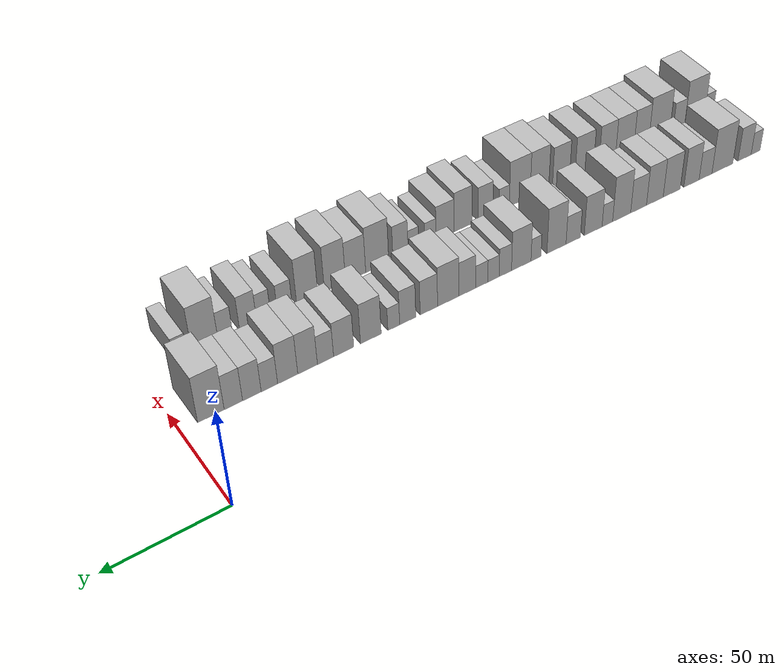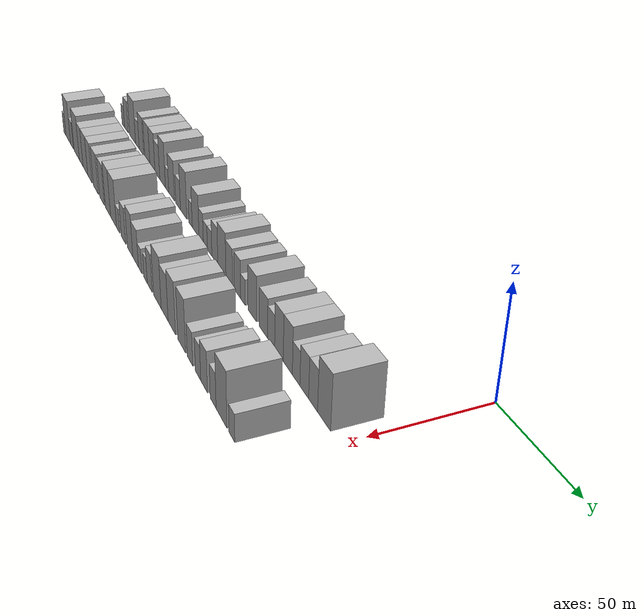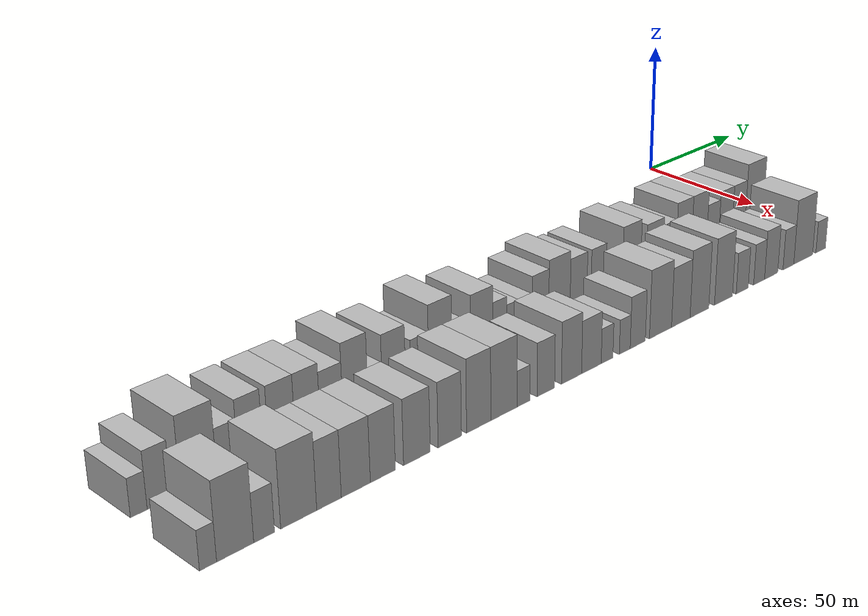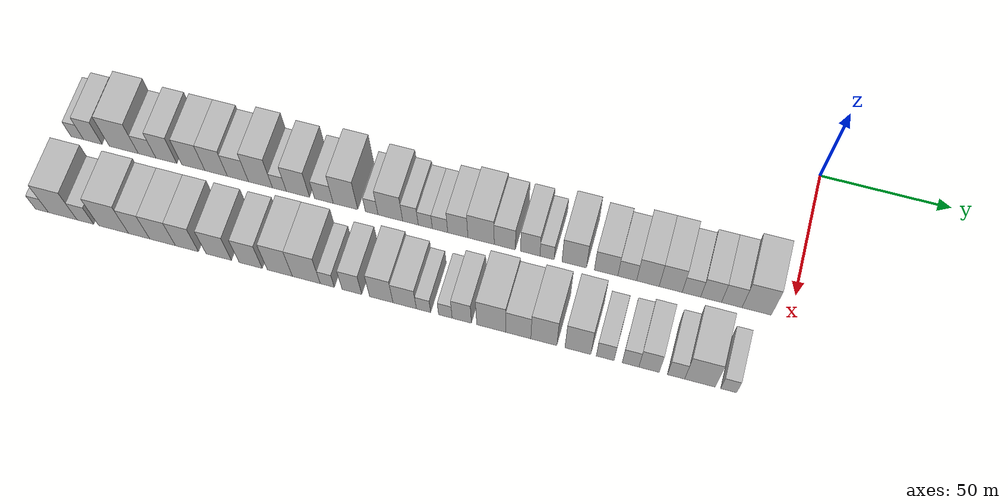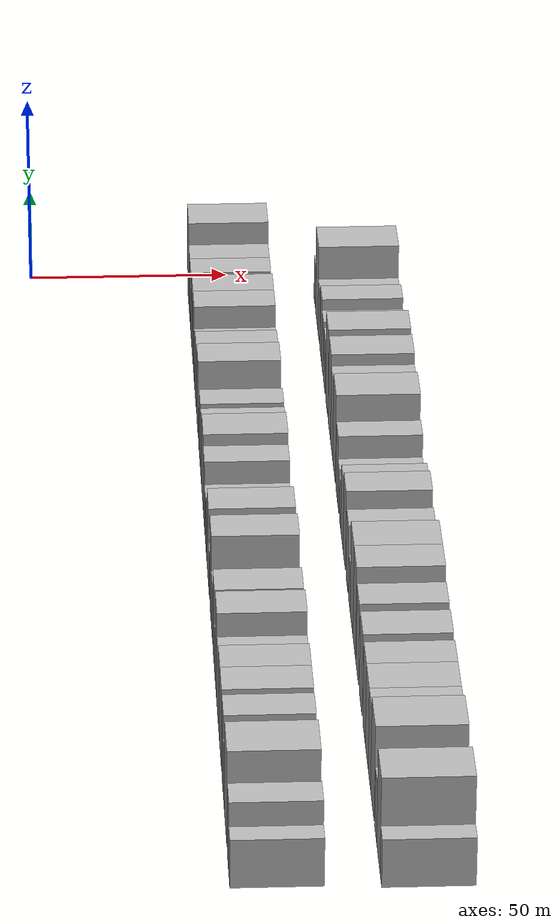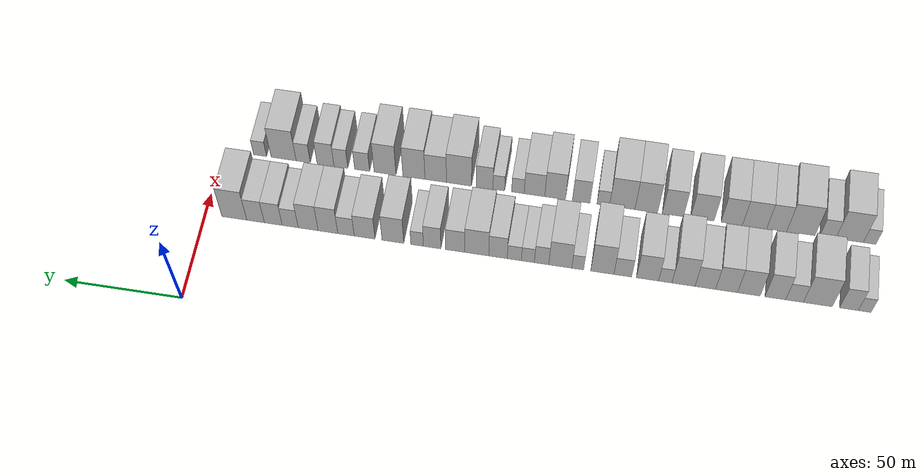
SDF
<sdf version="1.6">
 <world name="default">
  <model name="building_1">
   <static>1</static>
   <pose>50.0000 -278.3909 0 0.000000 0.000000 0.000000</pose>
   <link name="link">
    <pose>0 0 6.00 0 0 0</pose>
    <collision name="collision"><geometry><box><size>20.0000 5.2182 12.0000</size></box></geometry></collision>
    <visual name="visual">
     <cast_shadows>0</cast_shadows>
     <geometry><box><size>20.0000 5.2182 12.0000</size></box></geometry>
     <material>
      <script>
       <uri>model://HANNAS_wall/materials/scripts</uri>
       <uri>model://HANNAS_wall/materials/textures</uri>
       <name>vrc/HANNAS_wall</name>
      </script>
     </material>
    </visual>
   </link>
  </model>
  <model name="building_2">
   <static>1</static>
   <pose>50.0000 -271.9759 0 0.000000 0.000000 0.000000</pose>
   <link name="link">
    <pose>0 0 9.00 0 0 0</pose>
    <collision name="collision"><geometry><box><size>20.0000 7.6117 18.0000</size></box></geometry></collision>
    <visual name="visual">
     <cast_shadows>0</cast_shadows>
     <geometry><box><size>20.0000 7.6117 18.0000</size></box></geometry>
     <material>
      <script>
       <uri>model://HANNAS_wall/materials/scripts</uri>
       <uri>model://HANNAS_wall/materials/textures</uri>
       <name>vrc/HANNAS_wall</name>
      </script>
     </material>
    </visual>
   </link>
  </model>
  <model name="building_3">
   <static>1</static>
   <pose>50.0000 -259.2273 0 0.000000 0.000000 0.000000</pose>
   <link name="link">
    <pose>0 0 12.00 0 0 0</pose>
    <collision name="collision"><geometry><box><size>20.0000 11.8855 24.0000</size></box></geometry></collision>
    <visual name="visual">
     <cast_shadows>0</cast_shadows>
     <geometry><box><size>20.0000 11.8855 24.0000</size></box></geometry>
     <material>
      <script>
       <uri>model://HANNAS_wall/materials/scripts</uri>
       <uri>model://HANNAS_wall/materials/textures</uri>
       <name>vrc/HANNAS_wall</name>
      </script>
     </material>
    </visual>
   </link>
  </model>
  <model name="building_4">
   <static>1</static>
   <pose>50.0000 -249.6853 0 0.000000 0.000000 0.000000</pose>
   <link name="link">
    <pose>0 0 7.50 0 0 0</pose>
    <collision name="collision"><geometry><box><size>20.0000 7.1986 15.0000</size></box></geometry></collision>
    <visual name="visual">
     <cast_shadows>0</cast_shadows>
     <geometry><box><size>20.0000 7.1986 15.0000</size></box></geometry>
     <material>
      <script>
       <uri>model://HANNAS_wall/materials/scripts</uri>
       <uri>model://HANNAS_wall/materials/textures</uri>
       <name>vrc/HANNAS_wall</name>
      </script>
     </material>
    </visual>
   </link>
  </model>
  <model name="building_5">
   <static>1</static>
   <pose>50.0000 -241.8243 0 0.000000 0.000000 0.000000</pose>
   <link name="link">
    <pose>0 0 10.50 0 0 0</pose>
    <collision name="collision"><geometry><box><size>20.0000 8.5234 21.0000</size></box></geometry></collision>
    <visual name="visual">
     <cast_shadows>0</cast_shadows>
     <geometry><box><size>20.0000 8.5234 21.0000</size></box></geometry>
     <material>
      <script>
       <uri>model://HANNAS_wall/materials/scripts</uri>
       <uri>model://HANNAS_wall/materials/textures</uri>
       <name>vrc/HANNAS_wall</name>
      </script>
     </material>
    </visual>
   </link>
  </model>
  <model name="building_6">
   <static>1</static>
   <pose>50.0000 -230.8683 0 0.000000 0.000000 0.000000</pose>
   <link name="link">
    <pose>0 0 10.50 0 0 0</pose>
    <collision name="collision"><geometry><box><size>20.0000 9.3886 21.0000</size></box></geometry></collision>
    <visual name="visual">
     <cast_shadows>0</cast_shadows>
     <geometry><box><size>20.0000 9.3886 21.0000</size></box></geometry>
     <material>
      <script>
       <uri>model://HANNAS_wall/materials/scripts</uri>
       <uri>model://HANNAS_wall/materials/textures</uri>
       <name>vrc/HANNAS_wall</name>
      </script>
     </material>
    </visual>
   </link>
  </model>
  <model name="building_7">
   <static>1</static>
   <pose>50.0000 -221.6379 0 0.000000 0.000000 0.000000</pose>
   <link name="link">
    <pose>0 0 10.50 0 0 0</pose>
    <collision name="collision"><geometry><box><size>20.0000 9.0723 21.0000</size></box></geometry></collision>
    <visual name="visual">
     <cast_shadows>0</cast_shadows>
     <geometry><box><size>20.0000 9.0723 21.0000</size></box></geometry>
     <material>
      <script>
       <uri>model://HANNAS_wall/materials/scripts</uri>
       <uri>model://HANNAS_wall/materials/textures</uri>
       <name>vrc/HANNAS_wall</name>
      </script>
     </material>
    </visual>
   </link>
  </model>
  <model name="building_8">
   <static>1</static>
   <pose>50.0000 -212.8523 0 0.000000 0.000000 0.000000</pose>
   <link name="link">
    <pose>0 0 9.00 0 0 0</pose>
    <collision name="collision"><geometry><box><size>20.0000 8.4987 18.0000</size></box></geometry></collision>
    <visual name="visual">
     <cast_shadows>0</cast_shadows>
     <geometry><box><size>20.0000 8.4987 18.0000</size></box></geometry>
     <material>
      <script>
       <uri>model://HANNAS_wall/materials/scripts</uri>
       <uri>model://HANNAS_wall/materials/textures</uri>
       <name>vrc/HANNAS_wall</name>
      </script>
     </material>
    </visual>
   </link>
  </model>
  <model name="building_9">
   <static>1</static>
   <pose>50.0000 -203.7990 0 0.000000 0.000000 0.000000</pose>
   <link name="link">
    <pose>0 0 12.00 0 0 0</pose>
    <collision name="collision"><geometry><box><size>20.0000 9.6079 24.0000</size></box></geometry></collision>
    <visual name="visual">
     <cast_shadows>0</cast_shadows>
     <geometry><box><size>20.0000 9.6079 24.0000</size></box></geometry>
     <material>
      <script>
       <uri>model://HANNAS_wall/materials/scripts</uri>
       <uri>model://HANNAS_wall/materials/textures</uri>
       <name>vrc/HANNAS_wall</name>
      </script>
     </material>
    </visual>
   </link>
  </model>
  <model name="building_10">
   <static>1</static>
   <pose>50.0000 -196.2178 0 0.000000 0.000000 0.000000</pose>
   <link name="link">
    <pose>0 0 6.00 0 0 0</pose>
    <collision name="collision"><geometry><box><size>20.0000 5.5546 12.0000</size></box></geometry></collision>
    <visual name="visual">
     <cast_shadows>0</cast_shadows>
     <geometry><box><size>20.0000 5.5546 12.0000</size></box></geometry>
     <material>
      <script>
       <uri>model://HANNAS_wall/materials/scripts</uri>
       <uri>model://HANNAS_wall/materials/textures</uri>
       <name>vrc/HANNAS_wall</name>
      </script>
     </material>
    </visual>
   </link>
  </model>
  <model name="building_11">
   <static>1</static>
   <pose>50.0000 -188.8204 0 0.000000 0.000000 0.000000</pose>
   <link name="link">
    <pose>0 0 10.50 0 0 0</pose>
    <collision name="collision"><geometry><box><size>20.0000 9.2402 21.0000</size></box></geometry></collision>
    <visual name="visual">
     <cast_shadows>0</cast_shadows>
     <geometry><box><size>20.0000 9.2402 21.0000</size></box></geometry>
     <material>
      <script>
       <uri>model://HANNAS_wall/materials/scripts</uri>
       <uri>model://HANNAS_wall/materials/textures</uri>
       <name>vrc/HANNAS_wall</name>
      </script>
     </material>
    </visual>
   </link>
  </model>
  <model name="building_12">
   <static>1</static>
   <pose>50.0000 -178.4922 0 0.000000 0.000000 0.000000</pose>
   <link name="link">
    <pose>0 0 7.50 0 0 0</pose>
    <collision name="collision"><geometry><box><size>20.0000 7.4162 15.0000</size></box></geometry></collision>
    <visual name="visual">
     <cast_shadows>0</cast_shadows>
     <geometry><box><size>20.0000 7.4162 15.0000</size></box></geometry>
     <material>
      <script>
       <uri>model://HANNAS_wall/materials/scripts</uri>
       <uri>model://HANNAS_wall/materials/textures</uri>
       <name>vrc/HANNAS_wall</name>
      </script>
     </material>
    </visual>
   </link>
  </model>
  <model name="building_13">
   <static>1</static>
   <pose>50.0000 -169.9375 0 0.000000 0.000000 0.000000</pose>
   <link name="link">
    <pose>0 0 12.00 0 0 0</pose>
    <collision name="collision"><geometry><box><size>20.0000 9.6934 24.0000</size></box></geometry></collision>
    <visual name="visual">
     <cast_shadows>0</cast_shadows>
     <geometry><box><size>20.0000 9.6934 24.0000</size></box></geometry>
     <material>
      <script>
       <uri>model://HANNAS_wall/materials/scripts</uri>
       <uri>model://HANNAS_wall/materials/textures</uri>
       <name>vrc/HANNAS_wall</name>
      </script>
     </material>
    </visual>
   </link>
  </model>
  <model name="building_14">
   <static>1</static>
   <pose>50.0000 -159.5936 0 0.000000 0.000000 0.000000</pose>
   <link name="link">
    <pose>0 0 6.00 0 0 0</pose>
    <collision name="collision"><geometry><box><size>20.0000 4.9944 12.0000</size></box></geometry></collision>
    <visual name="visual">
     <cast_shadows>0</cast_shadows>
     <geometry><box><size>20.0000 4.9944 12.0000</size></box></geometry>
     <material>
      <script>
       <uri>model://HANNAS_wall/materials/scripts</uri>
       <uri>model://HANNAS_wall/materials/textures</uri>
       <name>vrc/HANNAS_wall</name>
      </script>
     </material>
    </visual>
   </link>
  </model>
  <model name="building_15">
   <static>1</static>
   <pose>50.0000 -152.2584 0 0.000000 0.000000 0.000000</pose>
   <link name="link">
    <pose>0 0 10.50 0 0 0</pose>
    <collision name="collision"><geometry><box><size>20.0000 9.6758 21.0000</size></box></geometry></collision>
    <visual name="visual">
     <cast_shadows>0</cast_shadows>
     <geometry><box><size>20.0000 9.6758 21.0000</size></box></geometry>
     <material>
      <script>
       <uri>model://HANNAS_wall/materials/scripts</uri>
       <uri>model://HANNAS_wall/materials/textures</uri>
       <name>vrc/HANNAS_wall</name>
      </script>
     </material>
    </visual>
   </link>
  </model>
  <model name="building_16">
   <static>1</static>
   <pose>50.0000 -144.3793 0 0.000000 0.000000 0.000000</pose>
   <link name="link">
    <pose>0 0 7.50 0 0 0</pose>
    <collision name="collision"><geometry><box><size>20.0000 6.0824 15.0000</size></box></geometry></collision>
    <visual name="visual">
     <cast_shadows>0</cast_shadows>
     <geometry><box><size>20.0000 6.0824 15.0000</size></box></geometry>
     <material>
      <script>
       <uri>model://HANNAS_wall/materials/scripts</uri>
       <uri>model://HANNAS_wall/materials/textures</uri>
       <name>vrc/HANNAS_wall</name>
      </script>
     </material>
    </visual>
   </link>
  </model>
  <model name="building_17">
   <static>1</static>
   <pose>50.0000 -138.5889 0 0.000000 0.000000 0.000000</pose>
   <link name="link">
    <pose>0 0 6.00 0 0 0</pose>
    <collision name="collision"><geometry><box><size>20.0000 5.4985 12.0000</size></box></geometry></collision>
    <visual name="visual">
     <cast_shadows>0</cast_shadows>
     <geometry><box><size>20.0000 5.4985 12.0000</size></box></geometry>
     <material>
      <script>
       <uri>model://HANNAS_wall/materials/scripts</uri>
       <uri>model://HANNAS_wall/materials/textures</uri>
       <name>vrc/HANNAS_wall</name>
      </script>
     </material>
    </visual>
   </link>
  </model>
  <model name="building_18">
   <static>1</static>
   <pose>50.0000 -132.8439 0 0.000000 0.000000 0.000000</pose>
   <link name="link">
    <pose>0 0 6.00 0 0 0</pose>
    <collision name="collision"><geometry><box><size>20.0000 5.9916 12.0000</size></box></geometry></collision>
    <visual name="visual">
     <cast_shadows>0</cast_shadows>
     <geometry><box><size>20.0000 5.9916 12.0000</size></box></geometry>
     <material>
      <script>
       <uri>model://HANNAS_wall/materials/scripts</uri>
       <uri>model://HANNAS_wall/materials/textures</uri>
       <name>vrc/HANNAS_wall</name>
      </script>
     </material>
    </visual>
   </link>
  </model>
  <model name="building_19">
   <static>1</static>
   <pose>50.0000 -125.9320 0 0.000000 0.000000 0.000000</pose>
   <link name="link">
    <pose>0 0 9.00 0 0 0</pose>
    <collision name="collision"><geometry><box><size>20.0000 7.8322 18.0000</size></box></geometry></collision>
    <visual name="visual">
     <cast_shadows>0</cast_shadows>
     <geometry><box><size>20.0000 7.8322 18.0000</size></box></geometry>
     <material>
      <script>
       <uri>model://HANNAS_wall/materials/scripts</uri>
       <uri>model://HANNAS_wall/materials/textures</uri>
       <name>vrc/HANNAS_wall</name>
      </script>
     </material>
    </visual>
   </link>
  </model>
  <model name="building_20">
   <static>1</static>
   <pose>50.0000 -116.9215 0 0.000000 0.000000 0.000000</pose>
   <link name="link">
    <pose>0 0 10.50 0 0 0</pose>
    <collision name="collision"><geometry><box><size>20.0000 10.1887 21.0000</size></box></geometry></collision>
    <visual name="visual">
     <cast_shadows>0</cast_shadows>
     <geometry><box><size>20.0000 10.1887 21.0000</size></box></geometry>
     <material>
      <script>
       <uri>model://HANNAS_wall/materials/scripts</uri>
       <uri>model://HANNAS_wall/materials/textures</uri>
       <name>vrc/HANNAS_wall</name>
      </script>
     </material>
    </visual>
   </link>
  </model>
  <model name="building_21">
   <static>1</static>
   <pose>50.0000 -107.7564 0 0.000000 0.000000 0.000000</pose>
   <link name="link">
    <pose>0 0 9.00 0 0 0</pose>
    <collision name="collision"><geometry><box><size>20.0000 8.1417 18.0000</size></box></geometry></collision>
    <visual name="visual">
     <cast_shadows>0</cast_shadows>
     <geometry><box><size>20.0000 8.1417 18.0000</size></box></geometry>
     <material>
      <script>
       <uri>model://HANNAS_wall/materials/scripts</uri>
       <uri>model://HANNAS_wall/materials/textures</uri>
       <name>vrc/HANNAS_wall</name>
      </script>
     </material>
    </visual>
   </link>
  </model>
  <model name="building_22">
   <static>1</static>
   <pose>50.0000 -97.9635 0 0.000000 0.000000 0.000000</pose>
   <link name="link">
    <pose>0 0 9.00 0 0 0</pose>
    <collision name="collision"><geometry><box><size>20.0000 7.4440 18.0000</size></box></geometry></collision>
    <visual name="visual">
     <cast_shadows>0</cast_shadows>
     <geometry><box><size>20.0000 7.4440 18.0000</size></box></geometry>
     <material>
      <script>
       <uri>model://HANNAS_wall/materials/scripts</uri>
       <uri>model://HANNAS_wall/materials/textures</uri>
       <name>vrc/HANNAS_wall</name>
      </script>
     </material>
    </visual>
   </link>
  </model>
  <model name="building_23">
   <static>1</static>
   <pose>50.0000 -91.5334 0 0.000000 0.000000 0.000000</pose>
   <link name="link">
    <pose>0 0 6.00 0 0 0</pose>
    <collision name="collision"><geometry><box><size>20.0000 5.4163 12.0000</size></box></geometry></collision>
    <visual name="visual">
     <cast_shadows>0</cast_shadows>
     <geometry><box><size>20.0000 5.4163 12.0000</size></box></geometry>
     <material>
      <script>
       <uri>model://HANNAS_wall/materials/scripts</uri>
       <uri>model://HANNAS_wall/materials/textures</uri>
       <name>vrc/HANNAS_wall</name>
      </script>
     </material>
    </visual>
   </link>
  </model>
  <model name="building_24">
   <static>1</static>
   <pose>50.0000 -81.1538 0 0.000000 0.000000 0.000000</pose>
   <link name="link">
    <pose>0 0 10.50 0 0 0</pose>
    <collision name="collision"><geometry><box><size>20.0000 9.3428 21.0000</size></box></geometry></collision>
    <visual name="visual">
     <cast_shadows>0</cast_shadows>
     <geometry><box><size>20.0000 9.3428 21.0000</size></box></geometry>
     <material>
      <script>
       <uri>model://HANNAS_wall/materials/scripts</uri>
       <uri>model://HANNAS_wall/materials/textures</uri>
       <name>vrc/HANNAS_wall</name>
      </script>
     </material>
    </visual>
   </link>
  </model>
  <model name="building_25">
   <static>1</static>
   <pose>50.0000 -69.0168 0 0.000000 0.000000 0.000000</pose>
   <link name="link">
    <pose>0 0 9.00 0 0 0</pose>
    <collision name="collision"><geometry><box><size>20.0000 8.9312 18.0000</size></box></geometry></collision>
    <visual name="visual">
     <cast_shadows>0</cast_shadows>
     <geometry><box><size>20.0000 8.9312 18.0000</size></box></geometry>
     <material>
      <script>
       <uri>model://HANNAS_wall/materials/scripts</uri>
       <uri>model://HANNAS_wall/materials/textures</uri>
       <name>vrc/HANNAS_wall</name>
      </script>
     </material>
    </visual>
   </link>
  </model>
  <model name="building_26">
   <static>1</static>
   <pose>50.0000 -61.0077 0 0.000000 0.000000 0.000000</pose>
   <link name="link">
    <pose>0 0 7.50 0 0 0</pose>
    <collision name="collision"><geometry><box><size>20.0000 7.0871 15.0000</size></box></geometry></collision>
    <visual name="visual">
     <cast_shadows>0</cast_shadows>
     <geometry><box><size>20.0000 7.0871 15.0000</size></box></geometry>
     <material>
      <script>
       <uri>model://HANNAS_wall/materials/scripts</uri>
       <uri>model://HANNAS_wall/materials/textures</uri>
       <name>vrc/HANNAS_wall</name>
      </script>
     </material>
    </visual>
   </link>
  </model>
  <model name="building_27">
   <static>1</static>
   <pose>50.0000 -53.2156 0 0.000000 0.000000 0.000000</pose>
   <link name="link">
    <pose>0 0 10.50 0 0 0</pose>
    <collision name="collision"><geometry><box><size>20.0000 8.4971 21.0000</size></box></geometry></collision>
    <visual name="visual">
     <cast_shadows>0</cast_shadows>
     <geometry><box><size>20.0000 8.4971 21.0000</size></box></geometry>
     <material>
      <script>
       <uri>model://HANNAS_wall/materials/scripts</uri>
       <uri>model://HANNAS_wall/materials/textures</uri>
       <name>vrc/HANNAS_wall</name>
      </script>
     </material>
    </visual>
   </link>
  </model>
  <model name="building_28">
   <static>1</static>
   <pose>50.0000 -44.6585 0 0.000000 0.000000 0.000000</pose>
   <link name="link">
    <pose>0 0 10.50 0 0 0</pose>
    <collision name="collision"><geometry><box><size>20.0000 8.6171 21.0000</size></box></geometry></collision>
    <visual name="visual">
     <cast_shadows>0</cast_shadows>
     <geometry><box><size>20.0000 8.6171 21.0000</size></box></geometry>
     <material>
      <script>
       <uri>model://HANNAS_wall/materials/scripts</uri>
       <uri>model://HANNAS_wall/materials/textures</uri>
       <name>vrc/HANNAS_wall</name>
      </script>
     </material>
    </visual>
   </link>
  </model>
  <model name="building_29">
   <static>1</static>
   <pose>50.0000 -36.8754 0 0.000000 0.000000 0.000000</pose>
   <link name="link">
    <pose>0 0 7.50 0 0 0</pose>
    <collision name="collision"><geometry><box><size>20.0000 6.9492 15.0000</size></box></geometry></collision>
    <visual name="visual">
     <cast_shadows>0</cast_shadows>
     <geometry><box><size>20.0000 6.9492 15.0000</size></box></geometry>
     <material>
      <script>
       <uri>model://HANNAS_wall/materials/scripts</uri>
       <uri>model://HANNAS_wall/materials/textures</uri>
       <name>vrc/HANNAS_wall</name>
      </script>
     </material>
    </visual>
   </link>
  </model>
  <model name="building_30">
   <static>1</static>
   <pose>50.0000 -29.5165 0 0.000000 0.000000 0.000000</pose>
   <link name="link">
    <pose>0 0 9.00 0 0 0</pose>
    <collision name="collision"><geometry><box><size>20.0000 7.7685 18.0000</size></box></geometry></collision>
    <visual name="visual">
     <cast_shadows>0</cast_shadows>
     <geometry><box><size>20.0000 7.7685 18.0000</size></box></geometry>
     <material>
      <script>
       <uri>model://HANNAS_wall/materials/scripts</uri>
       <uri>model://HANNAS_wall/materials/textures</uri>
       <name>vrc/HANNAS_wall</name>
      </script>
     </material>
    </visual>
   </link>
  </model>
  <model name="building_31">
   <static>1</static>
   <pose>50.0000 -21.8159 0 0.000000 0.000000 0.000000</pose>
   <link name="link">
    <pose>0 0 9.00 0 0 0</pose>
    <collision name="collision"><geometry><box><size>20.0000 7.6327 18.0000</size></box></geometry></collision>
    <visual name="visual">
     <cast_shadows>0</cast_shadows>
     <geometry><box><size>20.0000 7.6327 18.0000</size></box></geometry>
     <material>
      <script>
       <uri>model://HANNAS_wall/materials/scripts</uri>
       <uri>model://HANNAS_wall/materials/textures</uri>
       <name>vrc/HANNAS_wall</name>
      </script>
     </material>
    </visual>
   </link>
  </model>
  <model name="building_32">
   <static>1</static>
   <pose>50.0000 -12.5680 0 0.000000 0.000000 0.000000</pose>
   <link name="link">
    <pose>0 0 12.00 0 0 0</pose>
    <collision name="collision"><geometry><box><size>20.0000 10.8629 24.0000</size></box></geometry></collision>
    <visual name="visual">
     <cast_shadows>0</cast_shadows>
     <geometry><box><size>20.0000 10.8629 24.0000</size></box></geometry>
     <material>
      <script>
       <uri>model://HANNAS_wall/materials/scripts</uri>
       <uri>model://HANNAS_wall/materials/textures</uri>
       <name>vrc/HANNAS_wall</name>
      </script>
     </material>
    </visual>
   </link>
  </model>
  <model name="building_64">
   <static>1</static>
   <pose>82.0000 -279.3867 0 0.000000 0.000000 0.000000</pose>
   <link name="link">
    <pose>0 0 6.00 0 0 0</pose>
    <collision name="collision"><geometry><box><size>20.0000 5.2265 12.0000</size></box></geometry></collision>
    <visual name="visual">
     <cast_shadows>0</cast_shadows>
     <geometry><box><size>20.0000 5.2265 12.0000</size></box></geometry>
     <material>
      <script>
       <uri>model://HANNAS_wall/materials/scripts</uri>
       <uri>model://HANNAS_wall/materials/textures</uri>
       <name>vrc/HANNAS_wall</name>
      </script>
     </material>
    </visual>
   </link>
  </model>
  <model name="building_65">
   <static>1</static>
   <pose>82.0000 -270.9865 0 0.000000 0.000000 0.000000</pose>
   <link name="link">
    <pose>0 0 12.00 0 0 0</pose>
    <collision name="collision"><geometry><box><size>20.0000 11.5741 24.0000</size></box></geometry></collision>
    <visual name="visual">
     <cast_shadows>0</cast_shadows>
     <geometry><box><size>20.0000 11.5741 24.0000</size></box></geometry>
     <material>
      <script>
       <uri>model://HANNAS_wall/materials/scripts</uri>
       <uri>model://HANNAS_wall/materials/textures</uri>
       <name>vrc/HANNAS_wall</name>
      </script>
     </material>
    </visual>
   </link>
  </model>
  <model name="building_66">
   <static>1</static>
   <pose>82.0000 -261.8613 0 0.000000 0.000000 0.000000</pose>
   <link name="link">
    <pose>0 0 7.50 0 0 0</pose>
    <collision name="collision"><geometry><box><size>20.0000 6.6763 15.0000</size></box></geometry></collision>
    <visual name="visual">
     <cast_shadows>0</cast_shadows>
     <geometry><box><size>20.0000 6.6763 15.0000</size></box></geometry>
     <material>
      <script>
       <uri>model://HANNAS_wall/materials/scripts</uri>
       <uri>model://HANNAS_wall/materials/textures</uri>
       <name>vrc/HANNAS_wall</name>
      </script>
     </material>
    </visual>
   </link>
  </model>
  <model name="building_67">
   <static>1</static>
   <pose>82.0000 -250.5461 0 0.000000 0.000000 0.000000</pose>
   <link name="link">
    <pose>0 0 12.00 0 0 0</pose>
    <collision name="collision"><geometry><box><size>20.0000 11.9540 24.0000</size></box></geometry></collision>
    <visual name="visual">
     <cast_shadows>0</cast_shadows>
     <geometry><box><size>20.0000 11.9540 24.0000</size></box></geometry>
     <material>
      <script>
       <uri>model://HANNAS_wall/materials/scripts</uri>
       <uri>model://HANNAS_wall/materials/textures</uri>
       <name>vrc/HANNAS_wall</name>
      </script>
     </material>
    </visual>
   </link>
  </model>
  <model name="building_68">
   <static>1</static>
   <pose>82.0000 -240.3593 0 0.000000 0.000000 0.000000</pose>
   <link name="link">
    <pose>0 0 10.50 0 0 0</pose>
    <collision name="collision"><geometry><box><size>20.0000 8.4196 21.0000</size></box></geometry></collision>
    <visual name="visual">
     <cast_shadows>0</cast_shadows>
     <geometry><box><size>20.0000 8.4196 21.0000</size></box></geometry>
     <material>
      <script>
       <uri>model://HANNAS_wall/materials/scripts</uri>
       <uri>model://HANNAS_wall/materials/textures</uri>
       <name>vrc/HANNAS_wall</name>
      </script>
     </material>
    </visual>
   </link>
  </model>
  <model name="building_69">
   <static>1</static>
   <pose>82.0000 -231.0388 0 0.000000 0.000000 0.000000</pose>
   <link name="link">
    <pose>0 0 10.50 0 0 0</pose>
    <collision name="collision"><geometry><box><size>20.0000 10.2214 21.0000</size></box></geometry></collision>
    <visual name="visual">
     <cast_shadows>0</cast_shadows>
     <geometry><box><size>20.0000 10.2214 21.0000</size></box></geometry>
     <material>
      <script>
       <uri>model://HANNAS_wall/materials/scripts</uri>
       <uri>model://HANNAS_wall/materials/textures</uri>
       <name>vrc/HANNAS_wall</name>
      </script>
     </material>
    </visual>
   </link>
  </model>
  <model name="building_70">
   <static>1</static>
   <pose>82.0000 -221.3897 0 0.000000 0.000000 0.000000</pose>
   <link name="link">
    <pose>0 0 10.50 0 0 0</pose>
    <collision name="collision"><geometry><box><size>20.0000 9.0766 21.0000</size></box></geometry></collision>
    <visual name="visual">
     <cast_shadows>0</cast_shadows>
     <geometry><box><size>20.0000 9.0766 21.0000</size></box></geometry>
     <material>
      <script>
       <uri>model://HANNAS_wall/materials/scripts</uri>
       <uri>model://HANNAS_wall/materials/textures</uri>
       <name>vrc/HANNAS_wall</name>
      </script>
     </material>
    </visual>
   </link>
  </model>
  <model name="building_71">
   <static>1</static>
   <pose>82.0000 -208.8593 0 0.000000 0.000000 0.000000</pose>
   <link name="link">
    <pose>0 0 10.50 0 0 0</pose>
    <collision name="collision"><geometry><box><size>20.0000 9.9843 21.0000</size></box></geometry></collision>
    <visual name="visual">
     <cast_shadows>0</cast_shadows>
     <geometry><box><size>20.0000 9.9843 21.0000</size></box></geometry>
     <material>
      <script>
       <uri>model://HANNAS_wall/materials/scripts</uri>
       <uri>model://HANNAS_wall/materials/textures</uri>
       <name>vrc/HANNAS_wall</name>
      </script>
     </material>
    </visual>
   </link>
  </model>
  <model name="building_72">
   <static>1</static>
   <pose>82.0000 -196.3315 0 0.000000 0.000000 0.000000</pose>
   <link name="link">
    <pose>0 0 10.50 0 0 0</pose>
    <collision name="collision"><geometry><box><size>20.0000 9.0713 21.0000</size></box></geometry></collision>
    <visual name="visual">
     <cast_shadows>0</cast_shadows>
     <geometry><box><size>20.0000 9.0713 21.0000</size></box></geometry>
     <material>
      <script>
       <uri>model://HANNAS_wall/materials/scripts</uri>
       <uri>model://HANNAS_wall/materials/textures</uri>
       <name>vrc/HANNAS_wall</name>
      </script>
     </material>
    </visual>
   </link>
  </model>
  <model name="building_73">
   <static>1</static>
   <pose>82.0000 -184.9202 0 0.000000 0.000000 0.000000</pose>
   <link name="link">
    <pose>0 0 12.00 0 0 0</pose>
    <collision name="collision"><geometry><box><size>20.0000 9.7513 24.0000</size></box></geometry></collision>
    <visual name="visual">
     <cast_shadows>0</cast_shadows>
     <geometry><box><size>20.0000 9.7513 24.0000</size></box></geometry>
     <material>
      <script>
       <uri>model://HANNAS_wall/materials/scripts</uri>
       <uri>model://HANNAS_wall/materials/textures</uri>
       <name>vrc/HANNAS_wall</name>
      </script>
     </material>
    </visual>
   </link>
  </model>
  <model name="building_74">
   <static>1</static>
   <pose>82.0000 -174.6321 0 0.000000 0.000000 0.000000</pose>
   <link name="link">
    <pose>0 0 12.00 0 0 0</pose>
    <collision name="collision"><geometry><box><size>20.0000 10.8249 24.0000</size></box></geometry></collision>
    <visual name="visual">
     <cast_shadows>0</cast_shadows>
     <geometry><box><size>20.0000 10.8249 24.0000</size></box></geometry>
     <material>
      <script>
       <uri>model://HANNAS_wall/materials/scripts</uri>
       <uri>model://HANNAS_wall/materials/textures</uri>
       <name>vrc/HANNAS_wall</name>
      </script>
     </material>
    </visual>
   </link>
  </model>
  <model name="building_75">
   <static>1</static>
   <pose>82.0000 -166.5094 0 0.000000 0.000000 0.000000</pose>
   <link name="link">
    <pose>0 0 6.00 0 0 0</pose>
    <collision name="collision"><geometry><box><size>20.0000 5.4204 12.0000</size></box></geometry></collision>
    <visual name="visual">
     <cast_shadows>0</cast_shadows>
     <geometry><box><size>20.0000 5.4204 12.0000</size></box></geometry>
     <material>
      <script>
       <uri>model://HANNAS_wall/materials/scripts</uri>
       <uri>model://HANNAS_wall/materials/textures</uri>
       <name>vrc/HANNAS_wall</name>
      </script>
     </material>
    </visual>
   </link>
  </model>
  <model name="building_76">
   <static>1</static>
   <pose>82.0000 -157.0155 0 0.000000 0.000000 0.000000</pose>
   <link name="link">
    <pose>0 0 9.00 0 0 0</pose>
    <collision name="collision"><geometry><box><size>20.0000 7.5674 18.0000</size></box></geometry></collision>
    <visual name="visual">
     <cast_shadows>0</cast_shadows>
     <geometry><box><size>20.0000 7.5674 18.0000</size></box></geometry>
     <material>
      <script>
       <uri>model://HANNAS_wall/materials/scripts</uri>
       <uri>model://HANNAS_wall/materials/textures</uri>
       <name>vrc/HANNAS_wall</name>
      </script>
     </material>
    </visual>
   </link>
  </model>
  <model name="building_77">
   <static>1</static>
   <pose>82.0000 -145.7522 0 0.000000 0.000000 0.000000</pose>
   <link name="link">
    <pose>0 0 10.50 0 0 0</pose>
    <collision name="collision"><geometry><box><size>20.0000 8.9591 21.0000</size></box></geometry></collision>
    <visual name="visual">
     <cast_shadows>0</cast_shadows>
     <geometry><box><size>20.0000 8.9591 21.0000</size></box></geometry>
     <material>
      <script>
       <uri>model://HANNAS_wall/materials/scripts</uri>
       <uri>model://HANNAS_wall/materials/textures</uri>
       <name>vrc/HANNAS_wall</name>
      </script>
     </material>
    </visual>
   </link>
  </model>
  <model name="building_78">
   <static>1</static>
   <pose>82.0000 -136.8048 0 0.000000 0.000000 0.000000</pose>
   <link name="link">
    <pose>0 0 9.00 0 0 0</pose>
    <collision name="collision"><geometry><box><size>20.0000 8.9358 18.0000</size></box></geometry></collision>
    <visual name="visual">
     <cast_shadows>0</cast_shadows>
     <geometry><box><size>20.0000 8.9358 18.0000</size></box></geometry>
     <material>
      <script>
       <uri>model://HANNAS_wall/materials/scripts</uri>
       <uri>model://HANNAS_wall/materials/textures</uri>
       <name>vrc/HANNAS_wall</name>
      </script>
     </material>
    </visual>
   </link>
  </model>
  <model name="building_79">
   <static>1</static>
   <pose>82.0000 -129.6219 0 0.000000 0.000000 0.000000</pose>
   <link name="link">
    <pose>0 0 6.00 0 0 0</pose>
    <collision name="collision"><geometry><box><size>20.0000 5.4299 12.0000</size></box></geometry></collision>
    <visual name="visual">
     <cast_shadows>0</cast_shadows>
     <geometry><box><size>20.0000 5.4299 12.0000</size></box></geometry>
     <material>
      <script>
       <uri>model://HANNAS_wall/materials/scripts</uri>
       <uri>model://HANNAS_wall/materials/textures</uri>
       <name>vrc/HANNAS_wall</name>
      </script>
     </material>
    </visual>
   </link>
  </model>
  <model name="building_80">
   <static>1</static>
   <pose>82.0000 -121.3353 0 0.000000 0.000000 0.000000</pose>
   <link name="link">
    <pose>0 0 6.00 0 0 0</pose>
    <collision name="collision"><geometry><box><size>20.0000 5.1432 12.0000</size></box></geometry></collision>
    <visual name="visual">
     <cast_shadows>0</cast_shadows>
     <geometry><box><size>20.0000 5.1432 12.0000</size></box></geometry>
     <material>
      <script>
       <uri>model://HANNAS_wall/materials/scripts</uri>
       <uri>model://HANNAS_wall/materials/textures</uri>
       <name>vrc/HANNAS_wall</name>
      </script>
     </material>
    </visual>
   </link>
  </model>
  <model name="building_81">
   <static>1</static>
   <pose>82.0000 -115.1250 0 0.000000 0.000000 0.000000</pose>
   <link name="link">
    <pose>0 0 9.00 0 0 0</pose>
    <collision name="collision"><geometry><box><size>20.0000 7.2775 18.0000</size></box></geometry></collision>
    <visual name="visual">
     <cast_shadows>0</cast_shadows>
     <geometry><box><size>20.0000 7.2775 18.0000</size></box></geometry>
     <material>
      <script>
       <uri>model://HANNAS_wall/materials/scripts</uri>
       <uri>model://HANNAS_wall/materials/textures</uri>
       <name>vrc/HANNAS_wall</name>
      </script>
     </material>
    </visual>
   </link>
  </model>
  <model name="building_82">
   <static>1</static>
   <pose>82.0000 -104.0256 0 0.000000 0.000000 0.000000</pose>
   <link name="link">
    <pose>0 0 12.00 0 0 0</pose>
    <collision name="collision"><geometry><box><size>20.0000 10.9213 24.0000</size></box></geometry></collision>
    <visual name="visual">
     <cast_shadows>0</cast_shadows>
     <geometry><box><size>20.0000 10.9213 24.0000</size></box></geometry>
     <material>
      <script>
       <uri>model://HANNAS_wall/materials/scripts</uri>
       <uri>model://HANNAS_wall/materials/textures</uri>
       <name>vrc/HANNAS_wall</name>
      </script>
     </material>
    </visual>
   </link>
  </model>
  <model name="building_83">
   <static>1</static>
   <pose>82.0000 -93.8594 0 0.000000 0.000000 0.000000</pose>
   <link name="link">
    <pose>0 0 10.50 0 0 0</pose>
    <collision name="collision"><geometry><box><size>20.0000 9.4113 21.0000</size></box></geometry></collision>
    <visual name="visual">
     <cast_shadows>0</cast_shadows>
     <geometry><box><size>20.0000 9.4113 21.0000</size></box></geometry>
     <material>
      <script>
       <uri>model://HANNAS_wall/materials/scripts</uri>
       <uri>model://HANNAS_wall/materials/textures</uri>
       <name>vrc/HANNAS_wall</name>
      </script>
     </material>
    </visual>
   </link>
  </model>
  <model name="building_84">
   <static>1</static>
   <pose>82.0000 -84.3008 0 0.000000 0.000000 0.000000</pose>
   <link name="link">
    <pose>0 0 12.00 0 0 0</pose>
    <collision name="collision"><geometry><box><size>20.0000 9.7058 24.0000</size></box></geometry></collision>
    <visual name="visual">
     <cast_shadows>0</cast_shadows>
     <geometry><box><size>20.0000 9.7058 24.0000</size></box></geometry>
     <material>
      <script>
       <uri>model://HANNAS_wall/materials/scripts</uri>
       <uri>model://HANNAS_wall/materials/textures</uri>
       <name>vrc/HANNAS_wall</name>
      </script>
     </material>
    </visual>
   </link>
  </model>
  <model name="building_85">
   <static>1</static>
   <pose>82.0000 -71.6291 0 0.000000 0.000000 0.000000</pose>
   <link name="link">
    <pose>0 0 12.00 0 0 0</pose>
    <collision name="collision"><geometry><box><size>20.0000 9.6376 24.0000</size></box></geometry></collision>
    <visual name="visual">
     <cast_shadows>0</cast_shadows>
     <geometry><box><size>20.0000 9.6376 24.0000</size></box></geometry>
     <material>
      <script>
       <uri>model://HANNAS_wall/materials/scripts</uri>
       <uri>model://HANNAS_wall/materials/textures</uri>
       <name>vrc/HANNAS_wall</name>
      </script>
     </material>
    </visual>
   </link>
  </model>
  <model name="building_86">
   <static>1</static>
   <pose>82.0000 -61.5221 0 0.000000 0.000000 0.000000</pose>
   <link name="link">
    <pose>0 0 7.50 0 0 0</pose>
    <collision name="collision"><geometry><box><size>20.0000 6.5765 15.0000</size></box></geometry></collision>
    <visual name="visual">
     <cast_shadows>0</cast_shadows>
     <geometry><box><size>20.0000 6.5765 15.0000</size></box></geometry>
     <material>
      <script>
       <uri>model://HANNAS_wall/materials/scripts</uri>
       <uri>model://HANNAS_wall/materials/textures</uri>
       <name>vrc/HANNAS_wall</name>
      </script>
     </material>
    </visual>
   </link>
  </model>
  <model name="building_87">
   <static>1</static>
   <pose>82.0000 -52.1640 0 0.000000 0.000000 0.000000</pose>
   <link name="link">
    <pose>0 0 7.50 0 0 0</pose>
    <collision name="collision"><geometry><box><size>20.0000 6.1398 15.0000</size></box></geometry></collision>
    <visual name="visual">
     <cast_shadows>0</cast_shadows>
     <geometry><box><size>20.0000 6.1398 15.0000</size></box></geometry>
     <material>
      <script>
       <uri>model://HANNAS_wall/materials/scripts</uri>
       <uri>model://HANNAS_wall/materials/textures</uri>
       <name>vrc/HANNAS_wall</name>
      </script>
     </material>
    </visual>
   </link>
  </model>
  <model name="building_88">
   <static>1</static>
   <pose>82.0000 -45.3501 0 0.000000 0.000000 0.000000</pose>
   <link name="link">
    <pose>0 0 9.00 0 0 0</pose>
    <collision name="collision"><geometry><box><size>20.0000 7.4879 18.0000</size></box></geometry></collision>
    <visual name="visual">
     <cast_shadows>0</cast_shadows>
     <geometry><box><size>20.0000 7.4879 18.0000</size></box></geometry>
     <material>
      <script>
       <uri>model://HANNAS_wall/materials/scripts</uri>
       <uri>model://HANNAS_wall/materials/textures</uri>
       <name>vrc/HANNAS_wall</name>
      </script>
     </material>
    </visual>
   </link>
  </model>
  <model name="building_89">
   <static>1</static>
   <pose>82.0000 -35.4587 0 0.000000 0.000000 0.000000</pose>
   <link name="link">
    <pose>0 0 7.50 0 0 0</pose>
    <collision name="collision"><geometry><box><size>20.0000 6.2950 15.0000</size></box></geometry></collision>
    <visual name="visual">
     <cast_shadows>0</cast_shadows>
     <geometry><box><size>20.0000 6.2950 15.0000</size></box></geometry>
     <material>
      <script>
       <uri>model://HANNAS_wall/materials/scripts</uri>
       <uri>model://HANNAS_wall/materials/textures</uri>
       <name>vrc/HANNAS_wall</name>
      </script>
     </material>
    </visual>
   </link>
  </model>
  <model name="building_90">
   <static>1</static>
   <pose>82.0000 -26.7427 0 0.000000 0.000000 0.000000</pose>
   <link name="link">
    <pose>0 0 12.00 0 0 0</pose>
    <collision name="collision"><geometry><box><size>20.0000 11.1370 24.0000</size></box></geometry></collision>
    <visual name="visual">
     <cast_shadows>0</cast_shadows>
     <geometry><box><size>20.0000 11.1370 24.0000</size></box></geometry>
     <material>
      <script>
       <uri>model://HANNAS_wall/materials/scripts</uri>
       <uri>model://HANNAS_wall/materials/textures</uri>
       <name>vrc/HANNAS_wall</name>
      </script>
     </material>
    </visual>
   </link>
  </model>
  <model name="building_91">
   <static>1</static>
   <pose>82.0000 -16.2773 0 0.000000 0.000000 0.000000</pose>
   <link name="link">
    <pose>0 0 6.00 0 0 0</pose>
    <collision name="collision"><geometry><box><size>20.0000 5.7938 12.0000</size></box></geometry></collision>
    <visual name="visual">
     <cast_shadows>0</cast_shadows>
     <geometry><box><size>20.0000 5.7938 12.0000</size></box></geometry>
     <material>
      <script>
       <uri>model://HANNAS_wall/materials/scripts</uri>
       <uri>model://HANNAS_wall/materials/textures</uri>
       <name>vrc/HANNAS_wall</name>
      </script>
     </material>
    </visual>
   </link>
  </model>
 </world>
</sdf>
